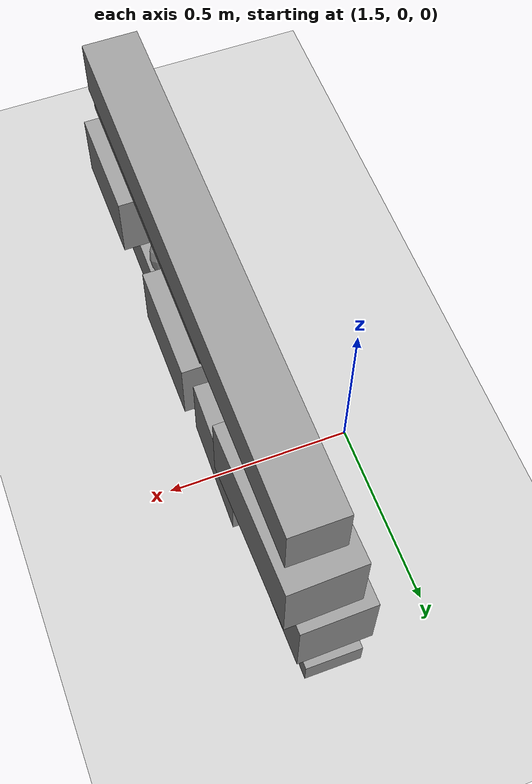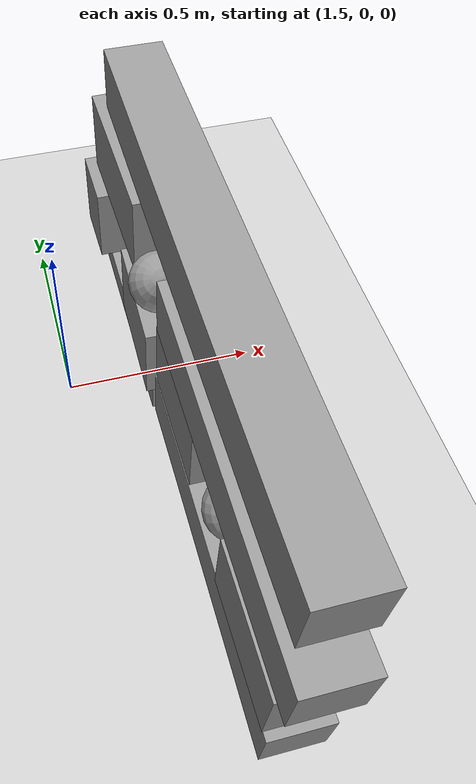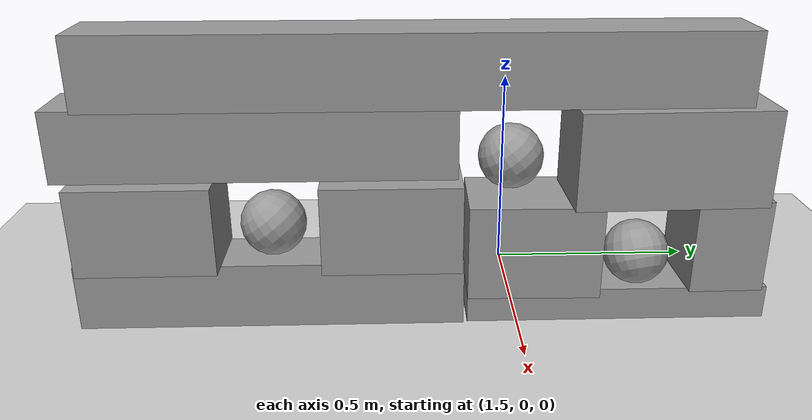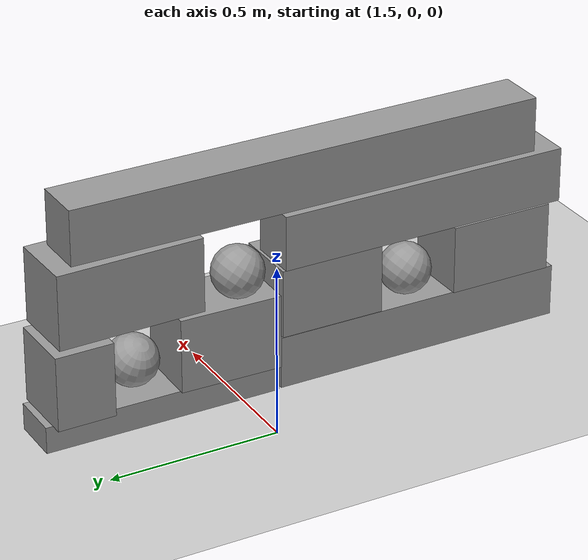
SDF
<sdf version="1.4">
 <world name="default">
  <model name="red_unit_sphere">
   <link name="link">
    <inertial>
     <mass>1</mass>
     <inertia><ixx>0.1</ixx><ixy>0</ixy><ixz>0</ixz><iyy>0.1</iyy><iyz>0</iyz><izz>0.1</izz></inertia>
    </inertial>
    <visual name="visual">
     <geometry><sphere><radius>0.0759064</radius></sphere></geometry>
     <material>
      <script><name>Gazebo/Grey</name><uri>file://media/materials/scripts/gazebo.material</uri></script>
      <shader type="pixel"><normal_map>__default__</normal_map></shader>
      <emissive>1 0 0 0</emissive>
      <ambient>0.3 0.3 0.3 1</ambient>
      <diffuse>0.7 0.7 0.7 1</diffuse>
      <specular>0.01 0.01 0.01 1</specular>
     </material>
    </visual>
    <collision name="collision">
     <geometry><sphere><radius>0.075906</radius></sphere></geometry>
     <surface>
      <friction>
       <ode><mu>1</mu><mu2>1</mu2><fdir1>0 0 0</fdir1><slip1>0</slip1><slip2>0</slip2></ode>
       <torsional>
        <coefficient>1</coefficient>
        <patch_radius>0</patch_radius>
        <surface_radius>0</surface_radius>
        <use_patch_radius>1</use_patch_radius>
        <ode><slip>0</slip></ode>
       </torsional>
      </friction>
      <bounce><restitution_coefficient>0</restitution_coefficient><threshold>1e+06</threshold></bounce>
      <contact>
       <collide_without_contact>0</collide_without_contact>
       <collide_without_contact_bitmask>1</collide_without_contact_bitmask>
       <collide_bitmask>1</collide_bitmask>
       <ode>
        <soft_cfm>0</soft_cfm>
        <soft_erp>0.2</soft_erp>
        <kp>1e+13</kp>
        <kd>1</kd>
        <max_vel>0.01</max_vel>
        <min_depth>0</min_depth>
       </ode>
       <bullet>
        <split_impulse>1</split_impulse>
        <split_impulse_penetration_threshold>-0.01</split_impulse_penetration_threshold>
        <soft_cfm>0</soft_cfm>
        <soft_erp>0.2</soft_erp>
        <kp>1e+13</kp>
        <kd>1</kd>
       </bullet>
      </contact>
     </surface>
    </collision>
   </link>
   <static>0</static>
   <pose>1.80361 0.282828 0.155002 -0.509135 -0.283195 1.35923</pose>
  </model>
  <model name="unit_box">
   <pose>1.77653 0.236871 0.03949 6.5e-05 -9e-06 -0.000842</pose>
   <link name="link">
    <inertial>
     <mass>1</mass>
     <inertia>
      <ixx>0.166667</ixx>
      <ixy>0</ixy>
      <ixz>0</ixz>
      <iyy>0.166667</iyy>
      <iyz>0</iyz>
      <izz>0.166667</izz>
     </inertia>
    </inertial>
    <collision name="collision">
     <geometry><box><size>0.148497 0.705305 0.0790958</size></box></geometry>
    </collision>
    <visual name="visual">
     <geometry><box><size>0.148497 0.705305 0.0790958</size></box></geometry>
     <material>
      <script><name>Gazebo/Grey</name><uri>file://media/materials/scripts/gazebo.material</uri></script>
     </material>
    </visual>
   </link>
  </model>
  <model name="unit_box_0">
   <pose>1.76893 0.483581 0.19009 1.4e-05 0 0.013532</pose>
   <link name="link">
    <inertial>
     <mass>1</mass>
     <inertia>
      <ixx>0.166667</ixx>
      <ixy>0</ixy>
      <ixz>0</ixz>
      <iyy>0.166667</iyy>
      <iyz>0</iyz>
      <izz>0.166667</izz>
     </inertia>
    </inertial>
    <collision name="collision"><geometry><box><size>0.198306 0.171598 0.22199</size></box></geometry></collision>
    <visual name="visual">
     <geometry><box><size>0.198306 0.171598 0.22199</size></box></geometry>
     <material>
      <script><name>Gazebo/Grey</name><uri>file://media/materials/scripts/gazebo.material</uri></script>
     </material>
    </visual>
   </link>
  </model>
  <model name="unit_box_0_clone">
   <pose>1.78818 0.034945 0.190002 6.8e-05 -1e-05 -0.019362</pose>
   <link name="link">
    <inertial>
     <mass>1</mass>
     <inertia>
      <ixx>0.166667</ixx>
      <ixy>0</ixy>
      <ixz>0</ixz>
      <iyy>0.166667</iyy>
      <iyz>0</iyz>
      <izz>0.166667</izz>
     </inertia>
    </inertial>
    <collision name="collision"><geometry><box><size>0.198306 0.303579 0.22199</size></box></geometry></collision>
    <visual name="visual">
     <geometry><box><size>0.198306 0.303579 0.22199</size></box></geometry>
     <material>
      <script><name>Gazebo/Grey</name><uri>file://media/materials/scripts/gazebo.material</uri></script>
     </material>
    </visual>
   </link>
  </model>
  <model name="unit_box_0_clone_0">
   <pose>1.80367 0.325954 0.412061 3.14157 -1e-05 0.02482</pose>
   <link name="link">
    <inertial>
     <mass>1</mass>
     <inertia>
      <ixx>0.166667</ixx>
      <ixy>0</ixy>
      <ixz>0</ixz>
      <iyy>0.166667</iyy>
      <iyz>0</iyz>
      <izz>0.166667</izz>
     </inertia>
    </inertial>
    <collision name="collision"><geometry><box><size>0.198306 0.435237 0.22199</size></box></geometry></collision>
    <visual name="visual">
     <geometry><box><size>0.198306 0.435237 0.22199</size></box></geometry>
     <material>
      <script><name>Gazebo/Grey</name><uri>file://media/materials/scripts/gazebo.material</uri></script>
     </material>
    </visual>
   </link>
  </model>
  <model name="ground_plane">
   <static>1</static>
   <link name="link">
    <collision name="collision">
     <geometry><plane><normal>0 0 1</normal><size>100 100</size></plane></geometry>
     <surface>
      <contact><collide_bitmask>65535</collide_bitmask></contact>
      <friction><ode><mu>100</mu><mu2>50</mu2></ode></friction>
     </surface>
    </collision>
    <visual name="visual">
     <cast_shadows>0</cast_shadows>
     <geometry><plane><normal>0 0 1</normal><size>100 100</size></plane></geometry>
     <material>
      <script><uri>file://media/materials/scripts/gazebo.material</uri><name>Gazebo/Grey</name></script>
     </material>
    </visual>
   </link>
  </model>
  <light name="light" type="directional">
   <pose>0 4 2.5 -1 0 0</pose>
   <diffuse>1 1 1 1</diffuse>
   <specular>0.2 0.2 0.2 1</specular>
   <attenuation>
    <range>20</range>
    <constant>0.9</constant>
    <linear>0.01</linear>
    <quadratic>0.001</quadratic>
   </attenuation>
   <direction>0 0 -1</direction>
   <spot><inner_angle>0</inner_angle><outer_angle>0</outer_angle><falloff>0</falloff></spot>
  </light>
  <physics type="ode">
   <ode>
    <solver>
     <type>quick</type>
     <iters>100</iters>
     <precon_iters>0</precon_iters>
     <sor>1</sor>
     <use_dynamic_moi_rescaling>0</use_dynamic_moi_rescaling>
    </solver>
    <constraints>
     <cfm>0</cfm>
     <erp>0.2</erp>
     <contact_max_correcting_vel>0</contact_max_correcting_vel>
     <contact_surface_layer>0</contact_surface_layer>
    </constraints>
   </ode>
   <real_time_factor>1</real_time_factor>
   <max_step_size>0.001</max_step_size>
   <real_time_update_rate>1000</real_time_update_rate>
  </physics>
  <gravity>0 0 -9.81</gravity>
  <magnetic_field>6e-06 2.3e-05 -4.2e-05</magnetic_field>
  <atmosphere type="adiabatic"/>
  <scene><ambient>0.4 0.4 0.4 1</ambient><background>0.7 0.7 0.7 1</background><shadows>1</shadows></scene>
  <spherical_coordinates>
   <surface_model>EARTH_WGS84</surface_model>
   <latitude_deg>0</latitude_deg>
   <longitude_deg>0</longitude_deg>
   <elevation>0</elevation>
   <heading_deg>0</heading_deg>
  </spherical_coordinates>
  <model name="red_unit_sphere_clone">
   <link name="link">
    <inertial>
     <mass>1</mass>
     <inertia><ixx>0.1</ixx><ixy>0</ixy><ixz>0</ixz><iyy>0.1</iyy><iyz>0</iyz><izz>0.1</izz></inertia>
    </inertial>
    <visual name="visual">
     <geometry><sphere><radius>0.0759065</radius></sphere></geometry>
     <material>
      <script><name>Gazebo/Grey</name><uri>file://media/materials/scripts/gazebo.material</uri></script>
      <shader type="pixel"><normal_map>__default__</normal_map></shader>
      <emissive>1 0 0 0</emissive>
      <ambient>0.3 0.3 0.3 1</ambient>
      <diffuse>0.7 0.7 0.7 1</diffuse>
      <specular>0.01 0.01 0.01 1</specular>
     </material>
    </visual>
    <collision name="collision">
     <geometry><sphere><radius>0.0759058</radius></sphere></geometry>
     <surface>
      <friction>
       <ode><mu>1</mu><mu2>1</mu2><fdir1>0 0 0</fdir1><slip1>0</slip1><slip2>0</slip2></ode>
       <torsional>
        <coefficient>1</coefficient>
        <patch_radius>0</patch_radius>
        <surface_radius>0</surface_radius>
        <use_patch_radius>1</use_patch_radius>
        <ode><slip>0</slip></ode>
       </torsional>
      </friction>
      <bounce><restitution_coefficient>0</restitution_coefficient><threshold>1e+06</threshold></bounce>
      <contact>
       <collide_without_contact>0</collide_without_contact>
       <collide_without_contact_bitmask>1</collide_without_contact_bitmask>
       <collide_bitmask>1</collide_bitmask>
       <ode>
        <soft_cfm>0</soft_cfm>
        <soft_erp>0.2</soft_erp>
        <kp>1e+13</kp>
        <kd>1</kd>
        <max_vel>0.01</max_vel>
        <min_depth>0</min_depth>
       </ode>
       <bullet>
        <split_impulse>1</split_impulse>
        <split_impulse_penetration_threshold>-0.01</split_impulse_penetration_threshold>
        <soft_cfm>0</soft_cfm>
        <soft_erp>0.2</soft_erp>
        <kp>1e+13</kp>
        <kd>1</kd>
       </bullet>
      </contact>
     </surface>
    </collision>
   </link>
   <static>0</static>
   <pose>1.74621 -0.013162 0.376899 0.050513 -0.654855 1.40934</pose>
  </model>
  <model name="unit_box_clone">
   <pose>1.78125 -0.569814 0.077994 -3.2e-05 3e-06 7.7e-05</pose>
   <link name="link">
    <inertial>
     <mass>1</mass>
     <inertia>
      <ixx>0.166667</ixx>
      <ixy>0</ixy>
      <ixz>0</ixz>
      <iyy>0.166667</iyy>
      <iyz>0</iyz>
      <izz>0.166667</izz>
     </inertia>
    </inertial>
    <collision name="collision">
     <geometry><box><size>0.148497 0.889061 0.156066</size></box></geometry>
    </collision>
    <visual name="visual">
     <geometry><box><size>0.148497 0.889061 0.156066</size></box></geometry>
     <material>
      <script><name>Gazebo/Grey</name><uri>file://media/materials/scripts/gazebo.material</uri></script>
     </material>
    </visual>
   </link>
  </model>
  <model name="red_unit_sphere_clone_clone">
   <link name="link">
    <inertial>
     <mass>1</mass>
     <inertia><ixx>0.1</ixx><ixy>0</ixy><ixz>0</ixz><iyy>0.1</iyy><iyz>0</iyz><izz>0.1</izz></inertia>
    </inertial>
    <visual name="visual">
     <geometry><sphere><radius>0.0759065</radius></sphere></geometry>
     <material>
      <script><name>Gazebo/Grey</name><uri>file://media/materials/scripts/gazebo.material</uri></script>
      <shader type="pixel"><normal_map>__default__</normal_map></shader>
      <emissive>1 0 0 0</emissive>
      <ambient>0.3 0.3 0.3 1</ambient>
      <diffuse>0.7 0.7 0.7 1</diffuse>
      <specular>0.01 0.01 0.01 1</specular>
     </material>
    </visual>
    <collision name="collision">
     <geometry><sphere><radius>0.0759058</radius></sphere></geometry>
     <surface>
      <friction>
       <ode><mu>1</mu><mu2>1</mu2><fdir1>0 0 0</fdir1><slip1>0</slip1><slip2>0</slip2></ode>
       <torsional>
        <coefficient>1</coefficient>
        <patch_radius>0</patch_radius>
        <surface_radius>0</surface_radius>
        <use_patch_radius>1</use_patch_radius>
        <ode><slip>0</slip></ode>
       </torsional>
      </friction>
      <bounce><restitution_coefficient>0</restitution_coefficient><threshold>1e+06</threshold></bounce>
      <contact>
       <collide_without_contact>0</collide_without_contact>
       <collide_without_contact_bitmask>1</collide_without_contact_bitmask>
       <collide_bitmask>1</collide_bitmask>
       <ode>
        <soft_cfm>0</soft_cfm>
        <soft_erp>0.2</soft_erp>
        <kp>1e+13</kp>
        <kd>1</kd>
        <max_vel>0.01</max_vel>
        <min_depth>0</min_depth>
       </ode>
       <bullet>
        <split_impulse>1</split_impulse>
        <split_impulse_penetration_threshold>-0.01</split_impulse_penetration_threshold>
        <soft_cfm>0</soft_cfm>
        <soft_erp>0.2</soft_erp>
        <kp>1e+13</kp>
        <kd>1</kd>
       </bullet>
      </contact>
     </surface>
    </collision>
   </link>
   <static>0</static>
   <pose>1.78008 -0.563564 0.231933 0.035478 -0.670859 1.41868</pose>
  </model>
  <model name="unit_box_0_clone_0_clone">
   <pose>1.80845 -0.289697 0.258242 3.14157 -9e-06 0.001046</pose>
   <link name="link">
    <inertial>
     <mass>1</mass>
     <inertia>
      <ixx>0.166667</ixx>
      <ixy>0</ixy>
      <ixz>0</ixz>
      <iyy>0.166667</iyy>
      <iyz>0</iyz>
      <izz>0.166667</izz>
     </inertia>
    </inertial>
    <collision name="collision">
     <geometry><box><size>0.198306 0.313708 0.204397</size></box></geometry>
    </collision>
    <visual name="visual">
     <geometry><box><size>0.198306 0.313708 0.204397</size></box></geometry>
     <material>
      <script><name>Gazebo/Grey</name><uri>file://media/materials/scripts/gazebo.material</uri></script>
     </material>
    </visual>
   </link>
  </model>
  <model name="unit_box_0_clone_0_clone_clone">
   <pose>1.80274 -0.835871 0.258268 3.1415 1e-06 0.00716</pose>
   <link name="link">
    <inertial>
     <mass>1</mass>
     <inertia>
      <ixx>0.166667</ixx>
      <ixy>0</ixy>
      <ixz>0</ixz>
      <iyy>0.166667</iyy>
      <iyz>0</iyz>
      <izz>0.166667</izz>
     </inertia>
    </inertial>
    <collision name="collision">
     <geometry><box><size>0.198306 0.313708 0.204397</size></box></geometry>
    </collision>
    <visual name="visual">
     <geometry><box><size>0.198306 0.313708 0.204397</size></box></geometry>
     <material>
      <script><name>Gazebo/Grey</name><uri>file://media/materials/scripts/gazebo.material</uri></script>
     </material>
    </visual>
   </link>
  </model>
  <model name="unit_box_clone_clone">
   <pose>1.78359 -0.586537 0.442446 -9.9e-05 -0.000113 0.004046</pose>
   <link name="link">
    <inertial>
     <mass>1</mass>
     <inertia>
      <ixx>0.166667</ixx>
      <ixy>0</ixy>
      <ixz>0</ixz>
      <iyy>0.166667</iyy>
      <iyz>0</iyz>
      <izz>0.166667</izz>
     </inertia>
    </inertial>
    <collision name="collision">
     <geometry><box><size>0.148497 0.889061 0.163918</size></box></geometry>
    </collision>
    <visual name="visual">
     <geometry><box><size>0.148497 0.889061 0.163918</size></box></geometry>
     <material>
      <script><name>Gazebo/Grey</name><uri>file://media/materials/scripts/gazebo.material</uri></script>
     </material>
    </visual>
   </link>
  </model>
  <model name="unit_box_clone_clone_clone">
   <pose>1.8053 -0.234265 0.606368 -0.000405 2.7e-05 0.003466</pose>
   <link name="link">
    <inertial>
     <mass>1</mass>
     <inertia>
      <ixx>0.166667</ixx>
      <ixy>0</ixy>
      <ixz>0</ixz>
      <iyy>0.166667</iyy>
      <iyz>0</iyz>
      <izz>0.166667</izz>
     </inertia>
    </inertial>
    <collision name="collision"><geometry><box><size>0.148497 1.44036 0.163918</size></box></geometry></collision>
    <visual name="visual">
     <geometry><box><size>0.148497 1.44036 0.163918</size></box></geometry>
     <material>
      <script><name>Gazebo/Grey</name><uri>file://media/materials/scripts/gazebo.material</uri></script>
     </material>
    </visual>
   </link>
  </model>
 </world>
</sdf>
